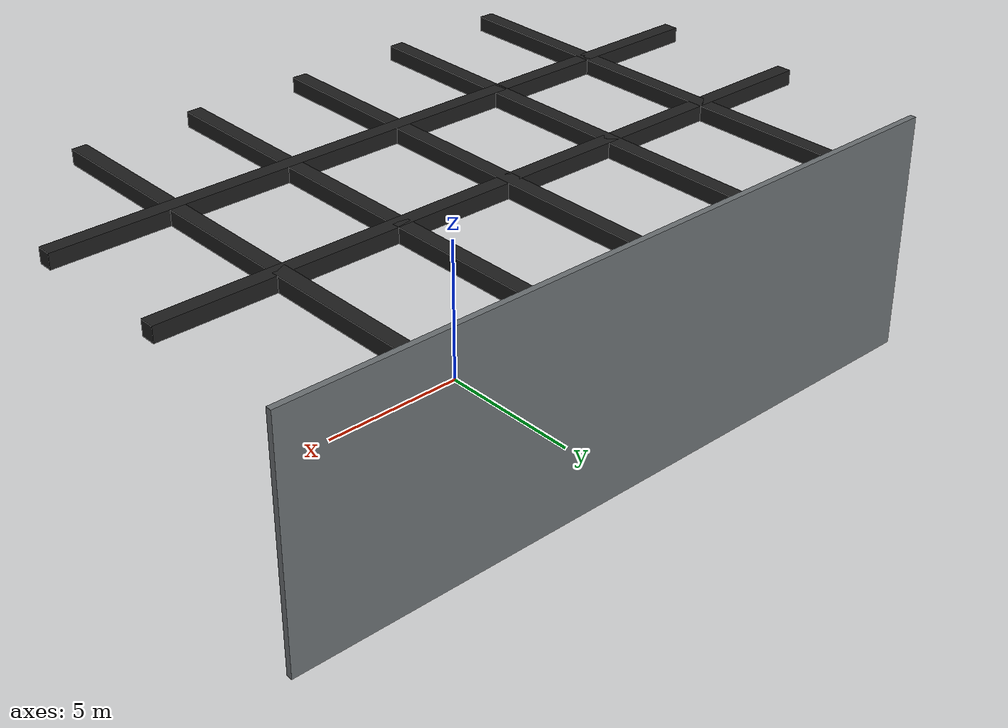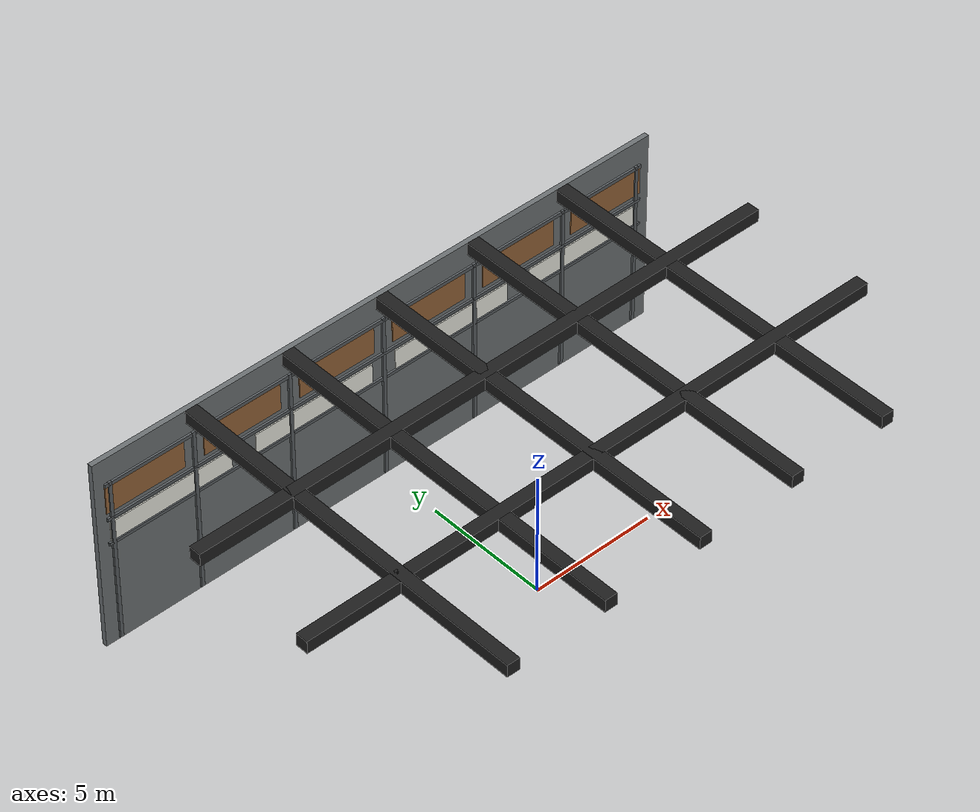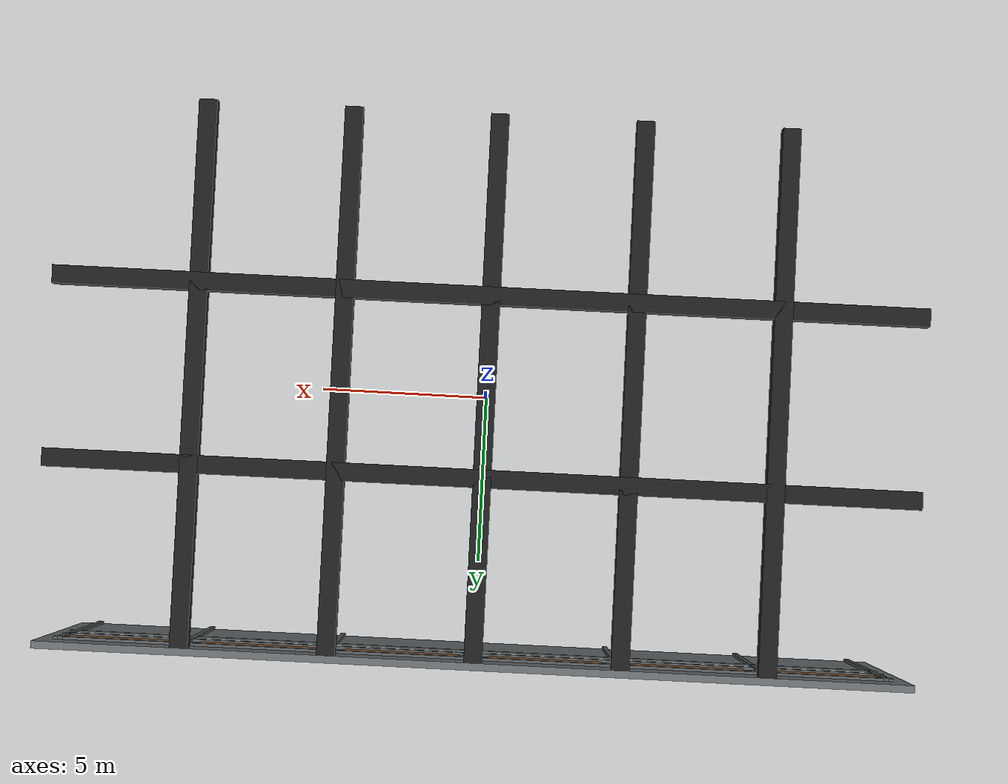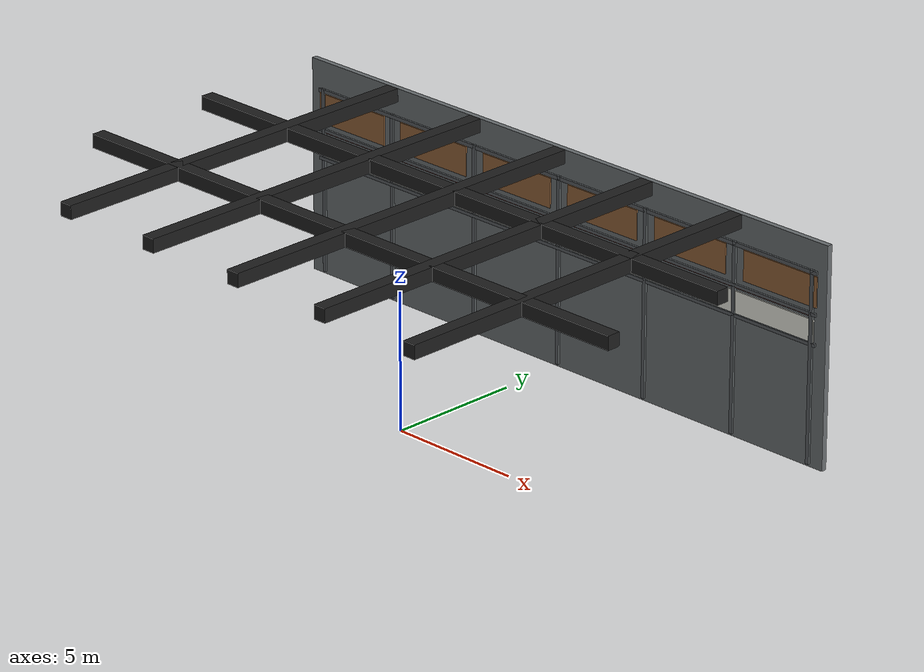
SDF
<sdf version="1.9">
 <world name="hangar_1">
  <model name="ground_plane">
   <static>true</static>
   <link name="link">
    <collision name="collision">
     <geometry><plane><normal>0 0 1</normal><size>24.0 15.0</size></plane></geometry>
    </collision>
   </link>
  </model>
  <model name="wall_east_inner_structure">
   <static>true</static>
   <pose>0 7.48 0 0 0 0</pose>
   <link name="link">
    <visual name="clerestory_white_panel_1">
     <pose>-9.0 0 4.85 0 0 0</pose>
     <geometry><box><size>5.0 0.035 0.8</size></box></geometry>
     <material>
      <ambient>0.92 0.92 0.88 1</ambient>
      <diffuse>0.92 0.92 0.88 1</diffuse>
      <emissive>0.18 0.18 0.16 1</emissive>
     </material>
    </visual>
    <visual name="clerestory_white_panel_2">
     <pose>-3.0 0 4.85 0 0 0</pose>
     <geometry><box><size>5.0 0.035 0.8</size></box></geometry>
     <material>
      <ambient>0.92 0.92 0.88 1</ambient>
      <diffuse>0.92 0.92 0.88 1</diffuse>
      <emissive>0.18 0.18 0.16 1</emissive>
     </material>
    </visual>
    <visual name="clerestory_white_panel_3">
     <pose>3.0 0 4.85 0 0 0</pose>
     <geometry><box><size>5.0 0.035 0.8</size></box></geometry>
     <material>
      <ambient>0.92 0.92 0.88 1</ambient>
      <diffuse>0.92 0.92 0.88 1</diffuse>
      <emissive>0.18 0.18 0.16 1</emissive>
     </material>
    </visual>
    <visual name="clerestory_white_panel_4">
     <pose>9.0 0 4.85 0 0 0</pose>
     <geometry><box><size>5.0 0.035 0.8</size></box></geometry>
     <material>
      <ambient>0.92 0.92 0.88 1</ambient>
      <diffuse>0.92 0.92 0.88 1</diffuse>
      <emissive>0.18 0.18 0.16 1</emissive>
     </material>
    </visual>
    <visual name="louver_panel_1">
     <pose>-10.0 0 6.25 0 0 0</pose>
     <geometry><box><size>3.2 0.04 1.1</size></box></geometry>
     <material>
      <ambient>0.58 0.39 0.22 1</ambient>
      <diffuse>0.58 0.39 0.22 1</diffuse>
      <specular>0.08 0.06 0.04 1</specular>
     </material>
    </visual>
    <visual name="louver_panel_2">
     <pose>-6.0 0 6.25 0 0 0</pose>
     <geometry><box><size>3.2 0.04 1.1</size></box></geometry>
     <material>
      <ambient>0.58 0.39 0.22 1</ambient>
      <diffuse>0.58 0.39 0.22 1</diffuse>
      <specular>0.08 0.06 0.04 1</specular>
     </material>
    </visual>
    <visual name="louver_panel_3">
     <pose>-2.0 0 6.25 0 0 0</pose>
     <geometry><box><size>3.2 0.04 1.1</size></box></geometry>
     <material>
      <ambient>0.58 0.39 0.22 1</ambient>
      <diffuse>0.58 0.39 0.22 1</diffuse>
      <specular>0.08 0.06 0.04 1</specular>
     </material>
    </visual>
    <visual name="louver_panel_4">
     <pose>2.0 0 6.25 0 0 0</pose>
     <geometry><box><size>3.2 0.04 1.1</size></box></geometry>
     <material>
      <ambient>0.58 0.39 0.22 1</ambient>
      <diffuse>0.58 0.39 0.22 1</diffuse>
      <specular>0.08 0.06 0.04 1</specular>
     </material>
    </visual>
    <visual name="louver_panel_5">
     <pose>6.0 0 6.25 0 0 0</pose>
     <geometry><box><size>3.2 0.04 1.1</size></box></geometry>
     <material>
      <ambient>0.58 0.39 0.22 1</ambient>
      <diffuse>0.58 0.39 0.22 1</diffuse>
      <specular>0.08 0.06 0.04 1</specular>
     </material>
    </visual>
    <visual name="louver_panel_6">
     <pose>10.0 0 6.25 0 0 0</pose>
     <geometry><box><size>3.2 0.04 1.1</size></box></geometry>
     <material>
      <ambient>0.58 0.39 0.22 1</ambient>
      <diffuse>0.58 0.39 0.22 1</diffuse>
      <specular>0.08 0.06 0.04 1</specular>
     </material>
    </visual>
    <visual name="frame_post_1">
     <pose>-11.4 0 3.55 0 0 0</pose>
     <geometry><box><size>0.14 0.12 6.9</size></box></geometry>
     <material>
      <ambient>0.34 0.36 0.37 1</ambient>
      <diffuse>0.34 0.36 0.37 1</diffuse>
      <specular>0.25 0.25 0.25 1</specular>
     </material>
    </visual>
    <visual name="frame_post_2">
     <pose>-8.0 0 3.55 0 0 0</pose>
     <geometry><box><size>0.14 0.12 6.9</size></box></geometry>
     <material>
      <ambient>0.34 0.36 0.37 1</ambient>
      <diffuse>0.34 0.36 0.37 1</diffuse>
      <specular>0.25 0.25 0.25 1</specular>
     </material>
    </visual>
    <visual name="frame_post_3">
     <pose>-4.0 0 3.55 0 0 0</pose>
     <geometry><box><size>0.14 0.12 6.9</size></box></geometry>
     <material>
      <ambient>0.34 0.36 0.37 1</ambient>
      <diffuse>0.34 0.36 0.37 1</diffuse>
      <specular>0.25 0.25 0.25 1</specular>
     </material>
    </visual>
    <visual name="frame_post_4">
     <pose>0 0 3.55 0 0 0</pose>
     <geometry><box><size>0.14 0.12 6.9</size></box></geometry>
     <material>
      <ambient>0.34 0.36 0.37 1</ambient>
      <diffuse>0.34 0.36 0.37 1</diffuse>
      <specular>0.25 0.25 0.25 1</specular>
     </material>
    </visual>
    <visual name="frame_post_5">
     <pose>4.0 0 3.55 0 0 0</pose>
     <geometry><box><size>0.14 0.12 6.9</size></box></geometry>
     <material>
      <ambient>0.34 0.36 0.37 1</ambient>
      <diffuse>0.34 0.36 0.37 1</diffuse>
      <specular>0.25 0.25 0.25 1</specular>
     </material>
    </visual>
    <visual name="frame_post_6">
     <pose>8.0 0 3.55 0 0 0</pose>
     <geometry><box><size>0.14 0.12 6.9</size></box></geometry>
     <material>
      <ambient>0.34 0.36 0.37 1</ambient>
      <diffuse>0.34 0.36 0.37 1</diffuse>
      <specular>0.25 0.25 0.25 1</specular>
     </material>
    </visual>
    <visual name="frame_post_7">
     <pose>11.4 0 3.55 0 0 0</pose>
     <geometry><box><size>0.14 0.12 6.9</size></box></geometry>
     <material>
      <ambient>0.34 0.36 0.37 1</ambient>
      <diffuse>0.34 0.36 0.37 1</diffuse>
      <specular>0.25 0.25 0.25 1</specular>
     </material>
    </visual>
    <visual name="frame_bottom_rail">
     <pose>0 0 4.38 0 0 0</pose>
     <geometry><box><size>23.2 0.12 0.12</size></box></geometry>
     <material>
      <ambient>0.34 0.36 0.37 1</ambient>
      <diffuse>0.34 0.36 0.37 1</diffuse>
      <specular>0.25 0.25 0.25 1</specular>
     </material>
    </visual>
    <visual name="frame_mid_rail">
     <pose>0 0 5.45 0 0 0</pose>
     <geometry><box><size>23.2 0.12 0.12</size></box></geometry>
     <material>
      <ambient>0.34 0.36 0.37 1</ambient>
      <diffuse>0.34 0.36 0.37 1</diffuse>
      <specular>0.25 0.25 0.25 1</specular>
     </material>
    </visual>
    <visual name="frame_top_rail">
     <pose>0 0 6.92 0 0 0</pose>
     <geometry><box><size>23.2 0.12 0.14</size></box></geometry>
     <material>
      <ambient>0.34 0.36 0.37 1</ambient>
      <diffuse>0.34 0.36 0.37 1</diffuse>
      <specular>0.25 0.25 0.25 1</specular>
     </material>
    </visual>
    <visual name="thin_red_pipe">
     <pose>0 -0.01 5.38 0 0 0</pose>
     <geometry><box><size>22.8 0.04 0.04</size></box></geometry>
     <material><ambient>0.45 0.12 0.07 1</ambient><diffuse>0.45 0.12 0.07 1</diffuse></material>
    </visual>
   </link>
  </model>
  <model name="wall_east">
   <static>true</static>
   <pose>0 7.6 4.0 0 0 0</pose>
   <link name="link">
    <collision name="c"><geometry><box><size>24.0 0.2 8.0</size></box></geometry></collision>
    <visual name="v">
     <geometry><box><size>24.0 0.2 8.0</size></box></geometry>
     <material>
      <ambient>0.42 0.44 0.45 1</ambient>
      <diffuse>0.42 0.44 0.45 1</diffuse>
      <specular>0.18 0.18 0.18 1</specular>
     </material>
    </visual>
   </link>
  </model>
  <model name="ceiling_beam_grid">
   <static>true</static>
   <link name="link">
    <collision name="c_long_m8">
     <pose>-8 0 7.75 0 0 0</pose>
     <geometry><box><size>0.5 15.0 0.5</size></box></geometry>
    </collision>
    <visual name="v_long_m8">
     <pose>-8 0 7.75 0 0 0</pose>
     <geometry><box><size>0.5 15.0 0.5</size></box></geometry>
     <material><ambient>0.12 0.12 0.12 1</ambient><diffuse>0.12 0.12 0.12 1</diffuse></material>
    </visual>
    <collision name="c_long_m4">
     <pose>-4 0 7.75 0 0 0</pose>
     <geometry><box><size>0.5 15.0 0.5</size></box></geometry>
    </collision>
    <visual name="v_long_m4">
     <pose>-4 0 7.75 0 0 0</pose>
     <geometry><box><size>0.5 15.0 0.5</size></box></geometry>
     <material><ambient>0.12 0.12 0.12 1</ambient><diffuse>0.12 0.12 0.12 1</diffuse></material>
    </visual>
    <collision name="c_long_0">
     <pose>0 0 7.75 0 0 0</pose>
     <geometry><box><size>0.5 15.0 0.5</size></box></geometry>
    </collision>
    <visual name="v_long_0">
     <pose>0 0 7.75 0 0 0</pose>
     <geometry><box><size>0.5 15.0 0.5</size></box></geometry>
     <material><ambient>0.12 0.12 0.12 1</ambient><diffuse>0.12 0.12 0.12 1</diffuse></material>
    </visual>
    <collision name="c_long_4">
     <pose>4 0 7.75 0 0 0</pose>
     <geometry><box><size>0.5 15.0 0.5</size></box></geometry>
    </collision>
    <visual name="v_long_4">
     <pose>4 0 7.75 0 0 0</pose>
     <geometry><box><size>0.5 15.0 0.5</size></box></geometry>
     <material><ambient>0.12 0.12 0.12 1</ambient><diffuse>0.12 0.12 0.12 1</diffuse></material>
    </visual>
    <collision name="c_long_8">
     <pose>8 0 7.75 0 0 0</pose>
     <geometry><box><size>0.5 15.0 0.5</size></box></geometry>
    </collision>
    <visual name="v_long_8">
     <pose>8 0 7.75 0 0 0</pose>
     <geometry><box><size>0.5 15.0 0.5</size></box></geometry>
     <material><ambient>0.12 0.12 0.12 1</ambient><diffuse>0.12 0.12 0.12 1</diffuse></material>
    </visual>
    <collision name="c_short_m2p5">
     <pose>0 -2.5 7.75 0 0 0</pose>
     <geometry><box><size>24.0 0.5 0.5</size></box></geometry>
    </collision>
    <visual name="v_short_m2p5">
     <pose>0 -2.5 7.75 0 0 0</pose>
     <geometry><box><size>24.0 0.5 0.5</size></box></geometry>
     <material><ambient>0.12 0.12 0.12 1</ambient><diffuse>0.12 0.12 0.12 1</diffuse></material>
    </visual>
    <collision name="c_short_2p5">
     <pose>0 2.5 7.75 0 0 0</pose>
     <geometry><box><size>24.0 0.5 0.5</size></box></geometry>
    </collision>
    <visual name="v_short_2p5">
     <pose>0 2.5 7.75 0 0 0</pose>
     <geometry><box><size>24.0 0.5 0.5</size></box></geometry>
     <material><ambient>0.12 0.12 0.12 1</ambient><diffuse>0.12 0.12 0.12 1</diffuse></material>
    </visual>
   </link>
  </model>
 </world>
</sdf>
